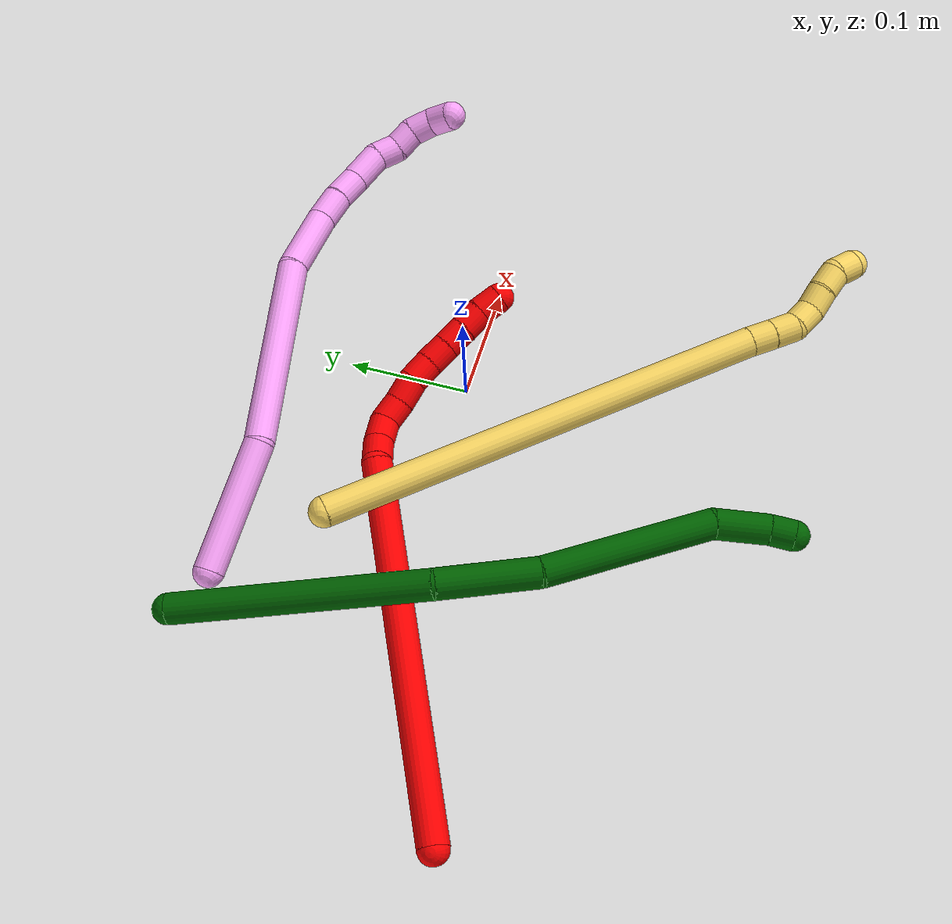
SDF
<sdf version="1.7">
 <world name="default">
  <model name="2">
   <static>0</static>
   <link name="2">
    <collision name="collision-cylinder-e_1_1_4">
     <pose>0.132969 0.051618 -0.06299 -2.4551 1.02127 -2.00582</pose>
     <geometry><cylinder><radius>0.0125</radius><length>0.311853</length></cylinder></geometry>
     <surface>
      <friction><ode><mu>1.16</mu><mu2>1.16</mu2><slip1>0</slip1><slip2>0</slip2></ode></friction>
      <contact><ode><kp>1e+06</kp><kd>1</kd><max_vel>0</max_vel><min_depth>0.001</min_depth></ode></contact>
     </surface>
    </collision>
    <visual name="visual-cylinder-e_1_1_4">
     <pose>0.132969 0.051618 -0.06299 -2.4551 1.02127 -2.00582</pose>
     <geometry><cylinder><radius>0.0125</radius><length>0.311853</length></cylinder></geometry>
     <material><ambient>1 0 0 1</ambient></material>
    </visual>
    <collision name="collision-cylinder-e_2_4_5">
     <pose>0.273718 0.105488 -0.134866 -2.89342 0.703719 -2.4866</pose>
     <geometry><cylinder><radius>0.0125</radius><length>0.024045</length></cylinder></geometry>
     <surface>
      <friction><ode><mu>1.16</mu><mu2>1.16</mu2><slip1>0</slip1><slip2>0</slip2></ode></friction>
      <contact><ode><kp>1e+06</kp><kd>1</kd><max_vel>0</max_vel><min_depth>0.001</min_depth></ode></contact>
     </surface>
    </collision>
    <visual name="visual-cylinder-e_2_4_5">
     <pose>0.273718 0.105488 -0.134866 -2.89342 0.703719 -2.4866</pose>
     <geometry><cylinder><radius>0.0125</radius><length>0.024045</length></cylinder></geometry>
     <material><ambient>1 0 0 1</ambient></material>
    </visual>
    <collision name="collision-cylinder-e_3_5_6">
     <pose>0.290549 0.107527 -0.149459 3.10449 1.00794 3.07434</pose>
     <geometry><cylinder><radius>0.0125</radius><length>0.021407</length></cylinder></geometry>
     <surface>
      <friction><ode><mu>1.16</mu><mu2>1.16</mu2><slip1>0</slip1><slip2>0</slip2></ode></friction>
      <contact><ode><kp>1e+06</kp><kd>1</kd><max_vel>0</max_vel><min_depth>0.001</min_depth></ode></contact>
     </surface>
    </collision>
    <visual name="visual-cylinder-e_3_5_6">
     <pose>0.290549 0.107527 -0.149459 3.10449 1.00794 3.07434</pose>
     <geometry><cylinder><radius>0.0125</radius><length>0.021407</length></cylinder></geometry>
     <material><ambient>1 0 0 1</ambient></material>
    </visual>
    <collision name="collision-cylinder-e_4_6_7">
     <pose>0.308315 0.102963 -0.158263 2.18926 1.0209 1.65293</pose>
     <geometry><cylinder><radius>0.0125</radius><length>0.020441</length></cylinder></geometry>
     <surface>
      <friction><ode><mu>1.16</mu><mu2>1.16</mu2><slip1>0</slip1><slip2>0</slip2></ode></friction>
      <contact><ode><kp>1e+06</kp><kd>1</kd><max_vel>0</max_vel><min_depth>0.001</min_depth></ode></contact>
     </surface>
    </collision>
    <visual name="visual-cylinder-e_4_6_7">
     <pose>0.308315 0.102963 -0.158263 2.18926 1.0209 1.65293</pose>
     <geometry><cylinder><radius>0.0125</radius><length>0.020441</length></cylinder></geometry>
     <material><ambient>1 0 0 1</ambient></material>
    </visual>
    <collision name="collision-cylinder-e_5_7_8">
     <pose>0.326481 0.094724 -0.162981 1.96564 1.15161 1.54429</pose>
     <geometry><cylinder><radius>0.0125</radius><length>0.020697</length></cylinder></geometry>
     <surface>
      <friction><ode><mu>1.16</mu><mu2>1.16</mu2><slip1>0</slip1><slip2>0</slip2></ode></friction>
      <contact><ode><kp>1e+06</kp><kd>1</kd><max_vel>0</max_vel><min_depth>0.001</min_depth></ode></contact>
     </surface>
    </collision>
    <visual name="visual-cylinder-e_5_7_8">
     <pose>0.326481 0.094724 -0.162981 1.96564 1.15161 1.54429</pose>
     <geometry><cylinder><radius>0.0125</radius><length>0.020697</length></cylinder></geometry>
     <material><ambient>1 0 0 1</ambient></material>
    </visual>
    <collision name="collision-cylinder-e_6_8_9">
     <pose>0.34433 0.085446 -0.167579 2.07566 0.938046 1.4194</pose>
     <geometry><cylinder><radius>0.0125</radius><length>0.020825</length></cylinder></geometry>
     <surface>
      <friction><ode><mu>1.16</mu><mu2>1.16</mu2><slip1>0</slip1><slip2>0</slip2></ode></friction>
      <contact><ode><kp>1e+06</kp><kd>1</kd><max_vel>0</max_vel><min_depth>0.001</min_depth></ode></contact>
     </surface>
    </collision>
    <visual name="visual-cylinder-e_6_8_9">
     <pose>0.34433 0.085446 -0.167579 2.07566 0.938046 1.4194</pose>
     <geometry><cylinder><radius>0.0125</radius><length>0.020825</length></cylinder></geometry>
     <material><ambient>1 0 0 1</ambient></material>
    </visual>
    <collision name="collision-cylinder-e_7_9_10">
     <pose>0.360692 0.074248 -0.172739 1.9301 0.908984 1.22877</pose>
     <geometry><cylinder><radius>0.0125</radius><length>0.020193</length></cylinder></geometry>
     <surface>
      <friction><ode><mu>1.16</mu><mu2>1.16</mu2><slip1>0</slip1><slip2>0</slip2></ode></friction>
      <contact><ode><kp>1e+06</kp><kd>1</kd><max_vel>0</max_vel><min_depth>0.001</min_depth></ode></contact>
     </surface>
    </collision>
    <visual name="visual-cylinder-e_7_9_10">
     <pose>0.360692 0.074248 -0.172739 1.9301 0.908984 1.22877</pose>
     <geometry><cylinder><radius>0.0125</radius><length>0.020193</length></cylinder></geometry>
     <material><ambient>1 0 0 1</ambient></material>
    </visual>
    <collision name="collision-cylinder-e_8_10_11">
     <pose>0.37674 0.062513 -0.176993 1.90713 0.9104 1.20752</pose>
     <geometry><cylinder><radius>0.0125</radius><length>0.020469</length></cylinder></geometry>
     <surface>
      <friction><ode><mu>1.16</mu><mu2>1.16</mu2><slip1>0</slip1><slip2>0</slip2></ode></friction>
      <contact><ode><kp>1e+06</kp><kd>1</kd><max_vel>0</max_vel><min_depth>0.001</min_depth></ode></contact>
     </surface>
    </collision>
    <visual name="visual-cylinder-e_8_10_11">
     <pose>0.37674 0.062513 -0.176993 1.90713 0.9104 1.20752</pose>
     <geometry><cylinder><radius>0.0125</radius><length>0.020469</length></cylinder></geometry>
     <material><ambient>1 0 0 1</ambient></material>
    </visual>
    <collision name="collision-cylinder-e_9_11_12">
     <pose>0.392946 0.051039 -0.181037 1.91227 0.943582 1.25175</pose>
     <geometry><cylinder><radius>0.0125</radius><length>0.020067</length></cylinder></geometry>
     <surface>
      <friction><ode><mu>1.16</mu><mu2>1.16</mu2><slip1>0</slip1><slip2>0</slip2></ode></friction>
      <contact><ode><kp>1e+06</kp><kd>1</kd><max_vel>0</max_vel><min_depth>0.001</min_depth></ode></contact>
     </surface>
    </collision>
    <visual name="visual-cylinder-e_9_11_12">
     <pose>0.392946 0.051039 -0.181037 1.91227 0.943582 1.25175</pose>
     <geometry><cylinder><radius>0.0125</radius><length>0.020067</length></cylinder></geometry>
     <material><ambient>1 0 0 1</ambient></material>
    </visual>
    <collision name="collision-cylinder-e_10_12_2">
     <pose>0.408021 0.038451 -0.184481 1.77692 0.768407 0.923407</pose>
     <geometry><cylinder><radius>0.0125</radius><length>0.020004</length></cylinder></geometry>
     <surface>
      <friction><ode><mu>1.16</mu><mu2>1.16</mu2><slip1>0</slip1><slip2>0</slip2></ode></friction>
      <contact><ode><kp>1e+06</kp><kd>1</kd><max_vel>0</max_vel><min_depth>0.001</min_depth></ode></contact>
     </surface>
    </collision>
    <visual name="visual-cylinder-e_10_12_2">
     <pose>0.408021 0.038451 -0.184481 1.77692 0.768407 0.923407</pose>
     <geometry><cylinder><radius>0.0125</radius><length>0.020004</length></cylinder></geometry>
     <material><ambient>1 0 0 1</ambient></material>
    </visual>
    <collision name="collision-sphere-2">
     <pose>0.414972 0.031411 -0.185952 0 -0 0</pose>
     <geometry><sphere><radius>0.0125</radius></sphere></geometry>
     <surface>
      <friction><ode><mu>1.16</mu><mu2>1.16</mu2><slip1>0</slip1><slip2>0</slip2></ode></friction>
      <contact><ode><kp>1e+06</kp><kd>1</kd><max_vel>0</max_vel><min_depth>0.001</min_depth></ode></contact>
     </surface>
    </collision>
    <visual name="visual-sphere-2">
     <pose>0.414972 0.031411 -0.185952 0 -0 0</pose>
     <geometry><sphere><radius>0.0125</radius></sphere></geometry>
     <material><ambient>1 0 0 1</ambient></material>
    </visual>
    <collision name="collision-sphere-12">
     <pose>0.401069 0.04549 -0.183009 0 -0 0</pose>
     <geometry><sphere><radius>0.0125</radius></sphere></geometry>
     <surface>
      <friction><ode><mu>1.16</mu><mu2>1.16</mu2><slip1>0</slip1><slip2>0</slip2></ode></friction>
      <contact><ode><kp>1e+06</kp><kd>1</kd><max_vel>0</max_vel><min_depth>0.001</min_depth></ode></contact>
     </surface>
    </collision>
    <visual name="visual-sphere-12">
     <pose>0.401069 0.04549 -0.183009 0 -0 0</pose>
     <geometry><sphere><radius>0.0125</radius></sphere></geometry>
     <material><ambient>1 0 0 1</ambient></material>
    </visual>
    <collision name="collision-sphere-11">
     <pose>0.384822 0.056587 -0.179065 0 -0 0</pose>
     <geometry><sphere><radius>0.0125</radius></sphere></geometry>
     <surface>
      <friction><ode><mu>1.16</mu><mu2>1.16</mu2><slip1>0</slip1><slip2>0</slip2></ode></friction>
      <contact><ode><kp>1e+06</kp><kd>1</kd><max_vel>0</max_vel><min_depth>0.001</min_depth></ode></contact>
     </surface>
    </collision>
    <visual name="visual-sphere-11">
     <pose>0.384822 0.056587 -0.179065 0 -0 0</pose>
     <geometry><sphere><radius>0.0125</radius></sphere></geometry>
     <material><ambient>1 0 0 1</ambient></material>
    </visual>
    <collision name="collision-sphere-10">
     <pose>0.368657 0.06844 -0.174921 0 -0 0</pose>
     <geometry><sphere><radius>0.0125</radius></sphere></geometry>
     <surface>
      <friction><ode><mu>1.16</mu><mu2>1.16</mu2><slip1>0</slip1><slip2>0</slip2></ode></friction>
      <contact><ode><kp>1e+06</kp><kd>1</kd><max_vel>0</max_vel><min_depth>0.001</min_depth></ode></contact>
     </surface>
    </collision>
    <visual name="visual-sphere-10">
     <pose>0.368657 0.06844 -0.174921 0 -0 0</pose>
     <geometry><sphere><radius>0.0125</radius></sphere></geometry>
     <material><ambient>1 0 0 1</ambient></material>
    </visual>
    <collision name="collision-sphere-9">
     <pose>0.352727 0.080057 -0.170557 0 -0 0</pose>
     <geometry><sphere><radius>0.0125</radius></sphere></geometry>
     <surface>
      <friction><ode><mu>1.16</mu><mu2>1.16</mu2><slip1>0</slip1><slip2>0</slip2></ode></friction>
      <contact><ode><kp>1e+06</kp><kd>1</kd><max_vel>0</max_vel><min_depth>0.001</min_depth></ode></contact>
     </surface>
    </collision>
    <visual name="visual-sphere-9">
     <pose>0.352727 0.080057 -0.170557 0 -0 0</pose>
     <geometry><sphere><radius>0.0125</radius></sphere></geometry>
     <material><ambient>1 0 0 1</ambient></material>
    </visual>
    <collision name="collision-sphere-4">
     <pose>0.265938 0.103236 -0.125981 0 -0 0</pose>
     <geometry><sphere><radius>0.0125</radius></sphere></geometry>
     <surface>
      <friction><ode><mu>1.16</mu><mu2>1.16</mu2><slip1>0</slip1><slip2>0</slip2></ode></friction>
      <contact><ode><kp>1e+06</kp><kd>1</kd><max_vel>0</max_vel><min_depth>0.001</min_depth></ode></contact>
     </surface>
    </collision>
    <visual name="visual-sphere-4">
     <pose>0.265938 0.103236 -0.125981 0 -0 0</pose>
     <geometry><sphere><radius>0.0125</radius></sphere></geometry>
     <material><ambient>1 0 0 1</ambient></material>
    </visual>
    <collision name="collision-sphere-1">
     <geometry><sphere><radius>0.0125</radius></sphere></geometry>
     <surface>
      <friction><ode><mu>1.16</mu><mu2>1.16</mu2><slip1>0</slip1><slip2>0</slip2></ode></friction>
      <contact><ode><kp>1e+06</kp><kd>1</kd><max_vel>0</max_vel><min_depth>0.001</min_depth></ode></contact>
     </surface>
    </collision>
    <visual name="visual-sphere-1">
     <geometry><sphere><radius>0.0125</radius></sphere></geometry>
     <material><ambient>1 0 0 1</ambient></material>
    </visual>
    <collision name="collision-sphere-8">
     <pose>0.335934 0.090836 -0.164601 0 -0 0</pose>
     <geometry><sphere><radius>0.0125</radius></sphere></geometry>
     <surface>
      <friction><ode><mu>1.16</mu><mu2>1.16</mu2><slip1>0</slip1><slip2>0</slip2></ode></friction>
      <contact><ode><kp>1e+06</kp><kd>1</kd><max_vel>0</max_vel><min_depth>0.001</min_depth></ode></contact>
     </surface>
    </collision>
    <visual name="visual-sphere-8">
     <pose>0.335934 0.090836 -0.164601 0 -0 0</pose>
     <geometry><sphere><radius>0.0125</radius></sphere></geometry>
     <material><ambient>1 0 0 1</ambient></material>
    </visual>
    <collision name="collision-sphere-5">
     <pose>0.281497 0.107739 -0.143752 0 -0 0</pose>
     <geometry><sphere><radius>0.0125</radius></sphere></geometry>
     <surface>
      <friction><ode><mu>1.16</mu><mu2>1.16</mu2><slip1>0</slip1><slip2>0</slip2></ode></friction>
      <contact><ode><kp>1e+06</kp><kd>1</kd><max_vel>0</max_vel><min_depth>0.001</min_depth></ode></contact>
     </surface>
    </collision>
    <visual name="visual-sphere-5">
     <pose>0.281497 0.107739 -0.143752 0 -0 0</pose>
     <geometry><sphere><radius>0.0125</radius></sphere></geometry>
     <material><ambient>1 0 0 1</ambient></material>
    </visual>
    <collision name="collision-sphere-6">
     <pose>0.299601 0.107315 -0.155167 0 -0 0</pose>
     <geometry><sphere><radius>0.0125</radius></sphere></geometry>
     <surface>
      <friction><ode><mu>1.16</mu><mu2>1.16</mu2><slip1>0</slip1><slip2>0</slip2></ode></friction>
      <contact><ode><kp>1e+06</kp><kd>1</kd><max_vel>0</max_vel><min_depth>0.001</min_depth></ode></contact>
     </surface>
    </collision>
    <visual name="visual-sphere-6">
     <pose>0.299601 0.107315 -0.155167 0 -0 0</pose>
     <geometry><sphere><radius>0.0125</radius></sphere></geometry>
     <material><ambient>1 0 0 1</ambient></material>
    </visual>
    <collision name="collision-sphere-7">
     <pose>0.317029 0.098612 -0.16136 0 -0 0</pose>
     <geometry><sphere><radius>0.0125</radius></sphere></geometry>
     <surface>
      <friction><ode><mu>1.16</mu><mu2>1.16</mu2><slip1>0</slip1><slip2>0</slip2></ode></friction>
      <contact><ode><kp>1e+06</kp><kd>1</kd><max_vel>0</max_vel><min_depth>0.001</min_depth></ode></contact>
     </surface>
    </collision>
    <visual name="visual-sphere-7">
     <pose>0.317029 0.098612 -0.16136 0 -0 0</pose>
     <geometry><sphere><radius>0.0125</radius></sphere></geometry>
     <material><ambient>1 0 0 1</ambient></material>
    </visual>
    <inertial>
     <pose>0.211081 0.062705 -0.101237 0 -0 0</pose>
     <mass>0.5</mass>
     <inertia>
      <ixx>-0.001725</ixx>
      <ixy>0</ixy>
      <ixz>0</ixz>
      <iyy>0.000887</iyy>
      <iyz>0</iyz>
      <izz>-0.003027</izz>
     </inertia>
    </inertial>
   </link>
   <pose>-0.375419 -0.088818 0.011496 -0.03916 -0.488552 0.125887</pose>
  </model>
  <model name="4">
   <static>0</static>
   <link name="4">
    <collision name="collision-cylinder-e_1_1_4">
     <pose>0.023039 0.01368 0.047461 -0.280633 0.436443 -0.062622</pose>
     <geometry><cylinder><radius>0.0125</radius><length>0.109004</length></cylinder></geometry>
     <surface>
      <friction><ode><mu>1.16</mu><mu2>1.16</mu2><slip1>0</slip1><slip2>0</slip2></ode></friction>
      <contact><ode><kp>1e+06</kp><kd>1</kd><max_vel>0</max_vel><min_depth>0.001</min_depth></ode></contact>
     </surface>
    </collision>
    <visual name="visual-cylinder-e_1_1_4">
     <pose>0.023039 0.01368 0.047461 -0.280633 0.436443 -0.062622</pose>
     <geometry><cylinder><radius>0.0125</radius><length>0.109004</length></cylinder></geometry>
     <material><ambient>1 0.65098 0.996078 1</ambient></material>
    </visual>
    <collision name="collision-cylinder-e_2_4_5">
     <pose>0.070943 0.024218 0.174741 0.039351 0.301764 0.005984</pose>
     <geometry><cylinder><radius>0.0125</radius><length>0.167324</length></cylinder></geometry>
     <surface>
      <friction><ode><mu>1.16</mu><mu2>1.16</mu2><slip1>0</slip1><slip2>0</slip2></ode></friction>
      <contact><ode><kp>1e+06</kp><kd>1</kd><max_vel>0</max_vel><min_depth>0.001</min_depth></ode></contact>
     </surface>
    </collision>
    <visual name="visual-cylinder-e_2_4_5">
     <pose>0.070943 0.024218 0.174741 0.039351 0.301764 0.005984</pose>
     <geometry><cylinder><radius>0.0125</radius><length>0.167324</length></cylinder></geometry>
     <material><ambient>1 0.65098 0.996078 1</ambient></material>
    </visual>
    <collision name="collision-cylinder-e_3_5_6">
     <pose>0.098222 0.025746 0.283567 -0.159654 0.082015 -0.006565</pose>
     <geometry><cylinder><radius>0.0125</radius><length>0.058958</length></cylinder></geometry>
     <surface>
      <friction><ode><mu>1.16</mu><mu2>1.16</mu2><slip1>0</slip1><slip2>0</slip2></ode></friction>
      <contact><ode><kp>1e+06</kp><kd>1</kd><max_vel>0</max_vel><min_depth>0.001</min_depth></ode></contact>
     </surface>
    </collision>
    <visual name="visual-cylinder-e_3_5_6">
     <pose>0.098222 0.025746 0.283567 -0.159654 0.082015 -0.006565</pose>
     <geometry><cylinder><radius>0.0125</radius><length>0.058958</length></cylinder></geometry>
     <material><ambient>1 0.65098 0.996078 1</ambient></material>
    </visual>
    <collision name="collision-cylinder-e_4_6_7">
     <pose>0.102632 0.03472 0.325388 -0.32402 0.146509 -0.023987</pose>
     <geometry><cylinder><radius>0.0125</radius><length>0.027328</length></cylinder></geometry>
     <surface>
      <friction><ode><mu>1.16</mu><mu2>1.16</mu2><slip1>0</slip1><slip2>0</slip2></ode></friction>
      <contact><ode><kp>1e+06</kp><kd>1</kd><max_vel>0</max_vel><min_depth>0.001</min_depth></ode></contact>
     </surface>
    </collision>
    <visual name="visual-cylinder-e_4_6_7">
     <pose>0.102632 0.03472 0.325388 -0.32402 0.146509 -0.023987</pose>
     <geometry><cylinder><radius>0.0125</radius><length>0.027328</length></cylinder></geometry>
     <material><ambient>1 0.65098 0.996078 1</ambient></material>
    </visual>
    <collision name="collision-cylinder-e_5_7_8">
     <pose>0.105135 0.043901 0.349859 -0.396239 0.040155 -0.008062</pose>
     <geometry><cylinder><radius>0.0125</radius><length>0.025292</length></cylinder></geometry>
     <surface>
      <friction><ode><mu>1.16</mu><mu2>1.16</mu2><slip1>0</slip1><slip2>0</slip2></ode></friction>
      <contact><ode><kp>1e+06</kp><kd>1</kd><max_vel>0</max_vel><min_depth>0.001</min_depth></ode></contact>
     </surface>
    </collision>
    <visual name="visual-cylinder-e_5_7_8">
     <pose>0.105135 0.043901 0.349859 -0.396239 0.040155 -0.008062</pose>
     <geometry><cylinder><radius>0.0125</radius><length>0.025292</length></cylinder></geometry>
     <material><ambient>1 0.65098 0.996078 1</ambient></material>
    </visual>
    <collision name="collision-cylinder-e_6_8_9">
     <pose>0.107821 0.055712 0.375347 -0.464716 0.139919 -0.03316</pose>
     <geometry><cylinder><radius>0.0125</radius><length>0.03125</length></cylinder></geometry>
     <surface>
      <friction><ode><mu>1.16</mu><mu2>1.16</mu2><slip1>0</slip1><slip2>0</slip2></ode></friction>
      <contact><ode><kp>1e+06</kp><kd>1</kd><max_vel>0</max_vel><min_depth>0.001</min_depth></ode></contact>
     </surface>
    </collision>
    <visual name="visual-cylinder-e_6_8_9">
     <pose>0.107821 0.055712 0.375347 -0.464716 0.139919 -0.03316</pose>
     <geometry><cylinder><radius>0.0125</radius><length>0.03125</length></cylinder></geometry>
     <material><ambient>1 0.65098 0.996078 1</ambient></material>
    </visual>
    <collision name="collision-cylinder-e_7_9_10">
     <pose>0.109353 0.070316 0.395975 -0.845718 -0.063072 0.02839</pose>
     <geometry><cylinder><radius>0.0125</radius><length>0.020536</length></cylinder></geometry>
     <surface>
      <friction><ode><mu>1.16</mu><mu2>1.16</mu2><slip1>0</slip1><slip2>0</slip2></ode></friction>
      <contact><ode><kp>1e+06</kp><kd>1</kd><max_vel>0</max_vel><min_depth>0.001</min_depth></ode></contact>
     </surface>
    </collision>
    <visual name="visual-cylinder-e_7_9_10">
     <pose>0.109353 0.070316 0.395975 -0.845718 -0.063072 0.02839</pose>
     <geometry><cylinder><radius>0.0125</radius><length>0.020536</length></cylinder></geometry>
     <material><ambient>1 0.65098 0.996078 1</ambient></material>
    </visual>
    <collision name="collision-cylinder-e_8_10_11">
     <pose>0.112007 0.084559 0.409661 -0.761956 0.333658 -0.134696</pose>
     <geometry><cylinder><radius>0.0125</radius><length>0.020157</length></cylinder></geometry>
     <surface>
      <friction><ode><mu>1.16</mu><mu2>1.16</mu2><slip1>0</slip1><slip2>0</slip2></ode></friction>
      <contact><ode><kp>1e+06</kp><kd>1</kd><max_vel>0</max_vel><min_depth>0.001</min_depth></ode></contact>
     </surface>
    </collision>
    <visual name="visual-cylinder-e_8_10_11">
     <pose>0.112007 0.084559 0.409661 -0.761956 0.333658 -0.134696</pose>
     <geometry><cylinder><radius>0.0125</radius><length>0.020157</length></cylinder></geometry>
     <material><ambient>1 0.65098 0.996078 1</ambient></material>
    </visual>
    <collision name="collision-cylinder-e_9_11_12">
     <pose>0.116918 0.100176 0.420638 -1.1462 0.160904 -0.103971</pose>
     <geometry><cylinder><radius>0.0125</radius><length>0.020108</length></cylinder></geometry>
     <surface>
      <friction><ode><mu>1.16</mu><mu2>1.16</mu2><slip1>0</slip1><slip2>0</slip2></ode></friction>
      <contact><ode><kp>1e+06</kp><kd>1</kd><max_vel>0</max_vel><min_depth>0.001</min_depth></ode></contact>
     </surface>
    </collision>
    <visual name="visual-cylinder-e_9_11_12">
     <pose>0.116918 0.100176 0.420638 -1.1462 0.160904 -0.103971</pose>
     <geometry><cylinder><radius>0.0125</radius><length>0.020108</length></cylinder></geometry>
     <material><ambient>1 0.65098 0.996078 1</ambient></material>
    </visual>
    <collision name="collision-cylinder-e_10_12_2">
     <pose>0.121072 0.118902 0.424269 -1.61807 0.256532 -0.26881</pose>
     <geometry><cylinder><radius>0.0125</radius><length>0.020043</length></cylinder></geometry>
     <surface>
      <friction><ode><mu>1.16</mu><mu2>1.16</mu2><slip1>0</slip1><slip2>0</slip2></ode></friction>
      <contact><ode><kp>1e+06</kp><kd>1</kd><max_vel>0</max_vel><min_depth>0.001</min_depth></ode></contact>
     </surface>
    </collision>
    <visual name="visual-cylinder-e_10_12_2">
     <pose>0.121072 0.118902 0.424269 -1.61807 0.256532 -0.26881</pose>
     <geometry><cylinder><radius>0.0125</radius><length>0.020043</length></cylinder></geometry>
     <material><ambient>1 0.65098 0.996078 1</ambient></material>
    </visual>
    <collision name="collision-sphere-2">
     <pose>0.123614 0.128584 0.42381 0 -0 0</pose>
     <geometry><sphere><radius>0.0125</radius></sphere></geometry>
     <surface>
      <friction><ode><mu>1.16</mu><mu2>1.16</mu2><slip1>0</slip1><slip2>0</slip2></ode></friction>
      <contact><ode><kp>1e+06</kp><kd>1</kd><max_vel>0</max_vel><min_depth>0.001</min_depth></ode></contact>
     </surface>
    </collision>
    <visual name="visual-sphere-2">
     <pose>0.123614 0.128584 0.42381 0 -0 0</pose>
     <geometry><sphere><radius>0.0125</radius></sphere></geometry>
     <material><ambient>1 0.65098 0.996078 1</ambient></material>
    </visual>
    <collision name="collision-sphere-12">
     <pose>0.118529 0.109219 0.424727 0 -0 0</pose>
     <geometry><sphere><radius>0.0125</radius></sphere></geometry>
     <surface>
      <friction><ode><mu>1.16</mu><mu2>1.16</mu2><slip1>0</slip1><slip2>0</slip2></ode></friction>
      <contact><ode><kp>1e+06</kp><kd>1</kd><max_vel>0</max_vel><min_depth>0.001</min_depth></ode></contact>
     </surface>
    </collision>
    <visual name="visual-sphere-12">
     <pose>0.118529 0.109219 0.424727 0 -0 0</pose>
     <geometry><sphere><radius>0.0125</radius></sphere></geometry>
     <material><ambient>1 0.65098 0.996078 1</ambient></material>
    </visual>
    <collision name="collision-sphere-11">
     <pose>0.115308 0.091133 0.41655 0 -0 0</pose>
     <geometry><sphere><radius>0.0125</radius></sphere></geometry>
     <surface>
      <friction><ode><mu>1.16</mu><mu2>1.16</mu2><slip1>0</slip1><slip2>0</slip2></ode></friction>
      <contact><ode><kp>1e+06</kp><kd>1</kd><max_vel>0</max_vel><min_depth>0.001</min_depth></ode></contact>
     </surface>
    </collision>
    <visual name="visual-sphere-11">
     <pose>0.115308 0.091133 0.41655 0 -0 0</pose>
     <geometry><sphere><radius>0.0125</radius></sphere></geometry>
     <material><ambient>1 0.65098 0.996078 1</ambient></material>
    </visual>
    <collision name="collision-sphere-10">
     <pose>0.108706 0.077986 0.402771 0 -0 0</pose>
     <geometry><sphere><radius>0.0125</radius></sphere></geometry>
     <surface>
      <friction><ode><mu>1.16</mu><mu2>1.16</mu2><slip1>0</slip1><slip2>0</slip2></ode></friction>
      <contact><ode><kp>1e+06</kp><kd>1</kd><max_vel>0</max_vel><min_depth>0.001</min_depth></ode></contact>
     </surface>
    </collision>
    <visual name="visual-sphere-10">
     <pose>0.108706 0.077986 0.402771 0 -0 0</pose>
     <geometry><sphere><radius>0.0125</radius></sphere></geometry>
     <material><ambient>1 0.65098 0.996078 1</ambient></material>
    </visual>
    <collision name="collision-sphere-9">
     <pose>0.11 0.062646 0.389179 0 -0 0</pose>
     <geometry><sphere><radius>0.0125</radius></sphere></geometry>
     <surface>
      <friction><ode><mu>1.16</mu><mu2>1.16</mu2><slip1>0</slip1><slip2>0</slip2></ode></friction>
      <contact><ode><kp>1e+06</kp><kd>1</kd><max_vel>0</max_vel><min_depth>0.001</min_depth></ode></contact>
     </surface>
    </collision>
    <visual name="visual-sphere-9">
     <pose>0.11 0.062646 0.389179 0 -0 0</pose>
     <geometry><sphere><radius>0.0125</radius></sphere></geometry>
     <material><ambient>1 0.65098 0.996078 1</ambient></material>
    </visual>
    <collision name="collision-sphere-4">
     <pose>0.046078 0.02736 0.094921 0 -0 0</pose>
     <geometry><sphere><radius>0.0125</radius></sphere></geometry>
     <surface>
      <friction><ode><mu>1.16</mu><mu2>1.16</mu2><slip1>0</slip1><slip2>0</slip2></ode></friction>
      <contact><ode><kp>1e+06</kp><kd>1</kd><max_vel>0</max_vel><min_depth>0.001</min_depth></ode></contact>
     </surface>
    </collision>
    <visual name="visual-sphere-4">
     <pose>0.046078 0.02736 0.094921 0 -0 0</pose>
     <geometry><sphere><radius>0.0125</radius></sphere></geometry>
     <material><ambient>1 0.65098 0.996078 1</ambient></material>
    </visual>
    <collision name="collision-sphere-1">
     <geometry><sphere><radius>0.0125</radius></sphere></geometry>
     <surface>
      <friction><ode><mu>1.16</mu><mu2>1.16</mu2><slip1>0</slip1><slip2>0</slip2></ode></friction>
      <contact><ode><kp>1e+06</kp><kd>1</kd><max_vel>0</max_vel><min_depth>0.001</min_depth></ode></contact>
     </surface>
    </collision>
    <visual name="visual-sphere-1">
     <geometry><sphere><radius>0.0125</radius></sphere></geometry>
     <material><ambient>1 0.65098 0.996078 1</ambient></material>
    </visual>
    <collision name="collision-sphere-8">
     <pose>0.105642 0.048777 0.361515 0 -0 0</pose>
     <geometry><sphere><radius>0.0125</radius></sphere></geometry>
     <surface>
      <friction><ode><mu>1.16</mu><mu2>1.16</mu2><slip1>0</slip1><slip2>0</slip2></ode></friction>
      <contact><ode><kp>1e+06</kp><kd>1</kd><max_vel>0</max_vel><min_depth>0.001</min_depth></ode></contact>
     </surface>
    </collision>
    <visual name="visual-sphere-8">
     <pose>0.105642 0.048777 0.361515 0 -0 0</pose>
     <geometry><sphere><radius>0.0125</radius></sphere></geometry>
     <material><ambient>1 0.65098 0.996078 1</ambient></material>
    </visual>
    <collision name="collision-sphere-5">
     <pose>0.095807 0.021075 0.254561 0 -0 0</pose>
     <geometry><sphere><radius>0.0125</radius></sphere></geometry>
     <surface>
      <friction><ode><mu>1.16</mu><mu2>1.16</mu2><slip1>0</slip1><slip2>0</slip2></ode></friction>
      <contact><ode><kp>1e+06</kp><kd>1</kd><max_vel>0</max_vel><min_depth>0.001</min_depth></ode></contact>
     </surface>
    </collision>
    <visual name="visual-sphere-5">
     <pose>0.095807 0.021075 0.254561 0 -0 0</pose>
     <geometry><sphere><radius>0.0125</radius></sphere></geometry>
     <material><ambient>1 0.65098 0.996078 1</ambient></material>
    </visual>
    <collision name="collision-sphere-6">
     <pose>0.100637 0.030416 0.312574 0 -0 0</pose>
     <geometry><sphere><radius>0.0125</radius></sphere></geometry>
     <surface>
      <friction><ode><mu>1.16</mu><mu2>1.16</mu2><slip1>0</slip1><slip2>0</slip2></ode></friction>
      <contact><ode><kp>1e+06</kp><kd>1</kd><max_vel>0</max_vel><min_depth>0.001</min_depth></ode></contact>
     </surface>
    </collision>
    <visual name="visual-sphere-6">
     <pose>0.100637 0.030416 0.312574 0 -0 0</pose>
     <geometry><sphere><radius>0.0125</radius></sphere></geometry>
     <material><ambient>1 0.65098 0.996078 1</ambient></material>
    </visual>
    <collision name="collision-sphere-7">
     <pose>0.104627 0.039024 0.338202 0 -0 0</pose>
     <geometry><sphere><radius>0.0125</radius></sphere></geometry>
     <surface>
      <friction><ode><mu>1.16</mu><mu2>1.16</mu2><slip1>0</slip1><slip2>0</slip2></ode></friction>
      <contact><ode><kp>1e+06</kp><kd>1</kd><max_vel>0</max_vel><min_depth>0.001</min_depth></ode></contact>
     </surface>
    </collision>
    <visual name="visual-sphere-7">
     <pose>0.104627 0.039024 0.338202 0 -0 0</pose>
     <geometry><sphere><radius>0.0125</radius></sphere></geometry>
     <material><ambient>1 0.65098 0.996078 1</ambient></material>
    </visual>
    <inertial>
     <pose>0.076574 0.036815 0.227904 0 -0 0</pose>
     <mass>0.5</mass>
     <inertia>
      <ixx>0.000519</ixx>
      <ixy>0</ixy>
      <ixz>0</ixz>
      <iyy>0.00054</iyy>
      <iyz>0</iyz>
      <izz>-0.00016</izz>
     </inertia>
    </inertial>
   </link>
   <pose>-0.216648 0.143629 0.012183 2.30635 -1.189 0.934422</pose>
  </model>
  <model name="5">
   <static>0</static>
   <link name="5">
    <collision name="collision-cylinder-e_1_1_4">
     <pose>0.103305 -0.122111 0.098569 0.891675 0.582182 0.284444</pose>
     <geometry><cylinder><radius>0.0125</radius><length>0.37576</length></cylinder></geometry>
     <surface>
      <friction><ode><mu>1.16</mu><mu2>1.16</mu2><slip1>0</slip1><slip2>0</slip2></ode></friction>
      <contact><ode><kp>1e+06</kp><kd>1</kd><max_vel>0</max_vel><min_depth>0.001</min_depth></ode></contact>
     </surface>
    </collision>
    <visual name="visual-cylinder-e_1_1_4">
     <pose>0.103305 -0.122111 0.098569 0.891675 0.582182 0.284444</pose>
     <geometry><cylinder><radius>0.0125</radius><length>0.37576</length></cylinder></geometry>
     <material><ambient>1 0.858824 0.4 1</ambient></material>
    </visual>
    <collision name="collision-cylinder-e_2_4_5">
     <pose>0.21283 -0.251156 0.202076 0.951952 0.630931 0.333364</pose>
     <geometry><cylinder><radius>0.0125</radius><length>0.021086</length></cylinder></geometry>
     <surface>
      <friction><ode><mu>1.16</mu><mu2>1.16</mu2><slip1>0</slip1><slip2>0</slip2></ode></friction>
      <contact><ode><kp>1e+06</kp><kd>1</kd><max_vel>0</max_vel><min_depth>0.001</min_depth></ode></contact>
     </surface>
    </collision>
    <visual name="visual-cylinder-e_2_4_5">
     <pose>0.21283 -0.251156 0.202076 0.951952 0.630931 0.333364</pose>
     <geometry><cylinder><radius>0.0125</radius><length>0.021086</length></cylinder></geometry>
     <material><ambient>1 0.858824 0.4 1</ambient></material>
    </visual>
    <collision name="collision-cylinder-e_3_5_6">
     <pose>0.225295 -0.265196 0.212256 0.935304 0.615703 0.318431</pose>
     <geometry><cylinder><radius>0.0125</radius><length>0.021629</length></cylinder></geometry>
     <surface>
      <friction><ode><mu>1.16</mu><mu2>1.16</mu2><slip1>0</slip1><slip2>0</slip2></ode></friction>
      <contact><ode><kp>1e+06</kp><kd>1</kd><max_vel>0</max_vel><min_depth>0.001</min_depth></ode></contact>
     </surface>
    </collision>
    <visual name="visual-cylinder-e_3_5_6">
     <pose>0.225295 -0.265196 0.212256 0.935304 0.615703 0.318431</pose>
     <geometry><cylinder><radius>0.0125</radius><length>0.021629</length></cylinder></geometry>
     <material><ambient>1 0.858824 0.4 1</ambient></material>
    </visual>
    <collision name="collision-cylinder-e_4_6_7">
     <pose>0.234031 -0.278816 0.225254 0.69855 0.240983 0.088138</pose>
     <geometry><cylinder><radius>0.0125</radius><length>0.020866</length></cylinder></geometry>
     <surface>
      <friction><ode><mu>1.16</mu><mu2>1.16</mu2><slip1>0</slip1><slip2>0</slip2></ode></friction>
      <contact><ode><kp>1e+06</kp><kd>1</kd><max_vel>0</max_vel><min_depth>0.001</min_depth></ode></contact>
     </surface>
    </collision>
    <visual name="visual-cylinder-e_4_6_7">
     <pose>0.234031 -0.278816 0.225254 0.69855 0.240983 0.088138</pose>
     <geometry><cylinder><radius>0.0125</radius><length>0.020866</length></cylinder></geometry>
     <material><ambient>1 0.858824 0.4 1</ambient></material>
    </visual>
    <collision name="collision-cylinder-e_5_7_8">
     <pose>0.236118 -0.29331 0.239307 0.902815 -0.03956 -0.01918</pose>
     <geometry><cylinder><radius>0.0125</radius><length>0.020341</length></cylinder></geometry>
     <surface>
      <friction><ode><mu>1.16</mu><mu2>1.16</mu2><slip1>0</slip1><slip2>0</slip2></ode></friction>
      <contact><ode><kp>1e+06</kp><kd>1</kd><max_vel>0</max_vel><min_depth>0.001</min_depth></ode></contact>
     </surface>
    </collision>
    <visual name="visual-cylinder-e_5_7_8">
     <pose>0.236118 -0.29331 0.239307 0.902815 -0.03956 -0.01918</pose>
     <geometry><cylinder><radius>0.0125</radius><length>0.020341</length></cylinder></geometry>
     <material><ambient>1 0.858824 0.4 1</ambient></material>
    </visual>
    <collision name="collision-cylinder-e_6_8_9">
     <pose>0.236322 -0.308475 0.252681 0.792964 0.059942 0.025101</pose>
     <geometry><cylinder><radius>0.0125</radius><length>0.020212</length></cylinder></geometry>
     <surface>
      <friction><ode><mu>1.16</mu><mu2>1.16</mu2><slip1>0</slip1><slip2>0</slip2></ode></friction>
      <contact><ode><kp>1e+06</kp><kd>1</kd><max_vel>0</max_vel><min_depth>0.001</min_depth></ode></contact>
     </surface>
    </collision>
    <visual name="visual-cylinder-e_6_8_9">
     <pose>0.236322 -0.308475 0.252681 0.792964 0.059942 0.025101</pose>
     <geometry><cylinder><radius>0.0125</radius><length>0.020212</length></cylinder></geometry>
     <material><ambient>1 0.858824 0.4 1</ambient></material>
    </visual>
    <collision name="collision-cylinder-e_7_9_2">
     <pose>0.241939 -0.321102 0.266568 0.67407 0.521972 0.186627</pose>
     <geometry><cylinder><radius>0.0125</radius><length>0.020106</length></cylinder></geometry>
     <surface>
      <friction><ode><mu>1.16</mu><mu2>1.16</mu2><slip1>0</slip1><slip2>0</slip2></ode></friction>
      <contact><ode><kp>1e+06</kp><kd>1</kd><max_vel>0</max_vel><min_depth>0.001</min_depth></ode></contact>
     </surface>
    </collision>
    <visual name="visual-cylinder-e_7_9_2">
     <pose>0.241939 -0.321102 0.266568 0.67407 0.521972 0.186627</pose>
     <geometry><cylinder><radius>0.0125</radius><length>0.020106</length></cylinder></geometry>
     <material><ambient>1 0.858824 0.4 1</ambient></material>
    </visual>
    <collision name="collision-sphere-2">
     <pose>0.246952 -0.326541 0.273377 0 -0 0</pose>
     <geometry><sphere><radius>0.0125</radius></sphere></geometry>
     <surface>
      <friction><ode><mu>1.16</mu><mu2>1.16</mu2><slip1>0</slip1><slip2>0</slip2></ode></friction>
      <contact><ode><kp>1e+06</kp><kd>1</kd><max_vel>0</max_vel><min_depth>0.001</min_depth></ode></contact>
     </surface>
    </collision>
    <visual name="visual-sphere-2">
     <pose>0.246952 -0.326541 0.273377 0 -0 0</pose>
     <geometry><sphere><radius>0.0125</radius></sphere></geometry>
     <material><ambient>1 0.858824 0.4 1</ambient></material>
    </visual>
    <collision name="collision-sphere-9">
     <pose>0.236927 -0.315662 0.25976 0 -0 0</pose>
     <geometry><sphere><radius>0.0125</radius></sphere></geometry>
     <surface>
      <friction><ode><mu>1.16</mu><mu2>1.16</mu2><slip1>0</slip1><slip2>0</slip2></ode></friction>
      <contact><ode><kp>1e+06</kp><kd>1</kd><max_vel>0</max_vel><min_depth>0.001</min_depth></ode></contact>
     </surface>
    </collision>
    <visual name="visual-sphere-9">
     <pose>0.236927 -0.315662 0.25976 0 -0 0</pose>
     <geometry><sphere><radius>0.0125</radius></sphere></geometry>
     <material><ambient>1 0.858824 0.4 1</ambient></material>
    </visual>
    <collision name="collision-sphere-4">
     <pose>0.20661 -0.244221 0.197138 0 -0 0</pose>
     <geometry><sphere><radius>0.0125</radius></sphere></geometry>
     <surface>
      <friction><ode><mu>1.16</mu><mu2>1.16</mu2><slip1>0</slip1><slip2>0</slip2></ode></friction>
      <contact><ode><kp>1e+06</kp><kd>1</kd><max_vel>0</max_vel><min_depth>0.001</min_depth></ode></contact>
     </surface>
    </collision>
    <visual name="visual-sphere-4">
     <pose>0.20661 -0.244221 0.197138 0 -0 0</pose>
     <geometry><sphere><radius>0.0125</radius></sphere></geometry>
     <material><ambient>1 0.858824 0.4 1</ambient></material>
    </visual>
    <collision name="collision-sphere-1">
     <geometry><sphere><radius>0.0125</radius></sphere></geometry>
     <surface>
      <friction><ode><mu>1.16</mu><mu2>1.16</mu2><slip1>0</slip1><slip2>0</slip2></ode></friction>
      <contact><ode><kp>1e+06</kp><kd>1</kd><max_vel>0</max_vel><min_depth>0.001</min_depth></ode></contact>
     </surface>
    </collision>
    <visual name="visual-sphere-1">
     <geometry><sphere><radius>0.0125</radius></sphere></geometry>
     <material><ambient>1 0.858824 0.4 1</ambient></material>
    </visual>
    <collision name="collision-sphere-8">
     <pose>0.235716 -0.301289 0.245602 0 -0 0</pose>
     <geometry><sphere><radius>0.0125</radius></sphere></geometry>
     <surface>
      <friction><ode><mu>1.16</mu><mu2>1.16</mu2><slip1>0</slip1><slip2>0</slip2></ode></friction>
      <contact><ode><kp>1e+06</kp><kd>1</kd><max_vel>0</max_vel><min_depth>0.001</min_depth></ode></contact>
     </surface>
    </collision>
    <visual name="visual-sphere-8">
     <pose>0.235716 -0.301289 0.245602 0 -0 0</pose>
     <geometry><sphere><radius>0.0125</radius></sphere></geometry>
     <material><ambient>1 0.858824 0.4 1</ambient></material>
    </visual>
    <collision name="collision-sphere-5">
     <pose>0.219049 -0.258091 0.207015 0 -0 0</pose>
     <geometry><sphere><radius>0.0125</radius></sphere></geometry>
     <surface>
      <friction><ode><mu>1.16</mu><mu2>1.16</mu2><slip1>0</slip1><slip2>0</slip2></ode></friction>
      <contact><ode><kp>1e+06</kp><kd>1</kd><max_vel>0</max_vel><min_depth>0.001</min_depth></ode></contact>
     </surface>
    </collision>
    <visual name="visual-sphere-5">
     <pose>0.219049 -0.258091 0.207015 0 -0 0</pose>
     <geometry><sphere><radius>0.0125</radius></sphere></geometry>
     <material><ambient>1 0.858824 0.4 1</ambient></material>
    </visual>
    <collision name="collision-sphere-6">
     <pose>0.231541 -0.272301 0.217496 0 -0 0</pose>
     <geometry><sphere><radius>0.0125</radius></sphere></geometry>
     <surface>
      <friction><ode><mu>1.16</mu><mu2>1.16</mu2><slip1>0</slip1><slip2>0</slip2></ode></friction>
      <contact><ode><kp>1e+06</kp><kd>1</kd><max_vel>0</max_vel><min_depth>0.001</min_depth></ode></contact>
     </surface>
    </collision>
    <visual name="visual-sphere-6">
     <pose>0.231541 -0.272301 0.217496 0 -0 0</pose>
     <geometry><sphere><radius>0.0125</radius></sphere></geometry>
     <material><ambient>1 0.858824 0.4 1</ambient></material>
    </visual>
    <collision name="collision-sphere-7">
     <pose>0.236521 -0.285332 0.233013 0 -0 0</pose>
     <geometry><sphere><radius>0.0125</radius></sphere></geometry>
     <surface>
      <friction><ode><mu>1.16</mu><mu2>1.16</mu2><slip1>0</slip1><slip2>0</slip2></ode></friction>
      <contact><ode><kp>1e+06</kp><kd>1</kd><max_vel>0</max_vel><min_depth>0.001</min_depth></ode></contact>
     </surface>
    </collision>
    <visual name="visual-sphere-7">
     <pose>0.236521 -0.285332 0.233013 0 -0 0</pose>
     <geometry><sphere><radius>0.0125</radius></sphere></geometry>
     <material><ambient>1 0.858824 0.4 1</ambient></material>
    </visual>
    <inertial>
     <pose>0.135012 -0.162782 0.13185 0 -0 0</pose>
     <mass>0.5</mass>
     <inertia>
      <ixx>0.004625</ixx>
      <ixy>0</ixy>
      <ixz>0</ixz>
      <iyy>0.004229</iyy>
      <iyz>0</iyz>
      <izz>0.000468</izz>
     </inertia>
    </inertial>
   </link>
   <pose>-0.162661 0.062389 0.056354 -2.17162 0.491901 -1.77012</pose>
  </model>
  <model name="6">
   <static>0</static>
   <link name="6">
    <collision name="collision-cylinder-e_1_1_4">
     <pose>0.047466 -0.072796 0.057169 0.905064 0.473843 0.233714</pose>
     <geometry><cylinder><radius>0.0125</radius><length>0.208045</length></cylinder></geometry>
     <surface>
      <friction><ode><mu>1.16</mu><mu2>1.16</mu2><slip1>0</slip1><slip2>0</slip2></ode></friction>
      <contact><ode><kp>1e+06</kp><kd>1</kd><max_vel>0</max_vel><min_depth>0.001</min_depth></ode></contact>
     </surface>
    </collision>
    <visual name="visual-cylinder-e_1_1_4">
     <pose>0.047466 -0.072796 0.057169 0.905064 0.473843 0.233714</pose>
     <geometry><cylinder><radius>0.0125</radius><length>0.208045</length></cylinder></geometry>
     <material><ambient>0 0.392157 0.003922 1</ambient></material>
    </visual>
    <collision name="collision-cylinder-e_2_4_5">
     <pose>0.112124 -0.179894 0.127883 1.19472 0.436205 0.299278</pose>
     <geometry><cylinder><radius>0.0125</radius><length>0.081378</length></cylinder></geometry>
     <surface>
      <friction><ode><mu>1.16</mu><mu2>1.16</mu2><slip1>0</slip1><slip2>0</slip2></ode></friction>
      <contact><ode><kp>1e+06</kp><kd>1</kd><max_vel>0</max_vel><min_depth>0.001</min_depth></ode></contact>
     </surface>
    </collision>
    <visual name="visual-cylinder-e_2_4_5">
     <pose>0.112124 -0.179894 0.127883 1.19472 0.436205 0.299278</pose>
     <geometry><cylinder><radius>0.0125</radius><length>0.081378</length></cylinder></geometry>
     <material><ambient>0 0.392157 0.003922 1</ambient></material>
    </visual>
    <collision name="collision-cylinder-e_3_5_6">
     <pose>0.166839 -0.274831 0.152451 1.39097 0.546905 0.459893</pose>
     <geometry><cylinder><radius>0.0125</radius><length>0.144308</length></cylinder></geometry>
     <surface>
      <friction><ode><mu>1.16</mu><mu2>1.16</mu2><slip1>0</slip1><slip2>0</slip2></ode></friction>
      <contact><ode><kp>1e+06</kp><kd>1</kd><max_vel>0</max_vel><min_depth>0.001</min_depth></ode></contact>
     </surface>
    </collision>
    <visual name="visual-cylinder-e_3_5_6">
     <pose>0.166839 -0.274831 0.152451 1.39097 0.546905 0.459893</pose>
     <geometry><cylinder><radius>0.0125</radius><length>0.144308</length></cylinder></geometry>
     <material><ambient>0 0.392157 0.003922 1</ambient></material>
    </visual>
    <collision name="collision-cylinder-e_4_6_7">
     <pose>0.209545 -0.356137 0.17203 1.17832 0.227648 0.15251</pose>
     <geometry><cylinder><radius>0.0125</radius><length>0.045928</length></cylinder></geometry>
     <surface>
      <friction><ode><mu>1.16</mu><mu2>1.16</mu2><slip1>0</slip1><slip2>0</slip2></ode></friction>
      <contact><ode><kp>1e+06</kp><kd>1</kd><max_vel>0</max_vel><min_depth>0.001</min_depth></ode></contact>
     </surface>
    </collision>
    <visual name="visual-cylinder-e_4_6_7">
     <pose>0.209545 -0.356137 0.17203 1.17832 0.227648 0.15251</pose>
     <geometry><cylinder><radius>0.0125</radius><length>0.045928</length></cylinder></geometry>
     <material><ambient>0 0.392157 0.003922 1</ambient></material>
    </visual>
    <collision name="collision-cylinder-e_5_7_2">
     <pose>0.216021 -0.385066 0.186382 0.958886 0.127546 0.066377</pose>
     <geometry><cylinder><radius>0.0125</radius><length>0.020341</length></cylinder></geometry>
     <surface>
      <friction><ode><mu>1.16</mu><mu2>1.16</mu2><slip1>0</slip1><slip2>0</slip2></ode></friction>
      <contact><ode><kp>1e+06</kp><kd>1</kd><max_vel>0</max_vel><min_depth>0.001</min_depth></ode></contact>
     </surface>
    </collision>
    <visual name="visual-cylinder-e_5_7_2">
     <pose>0.216021 -0.385066 0.186382 0.958886 0.127546 0.066377</pose>
     <geometry><cylinder><radius>0.0125</radius><length>0.020341</length></cylinder></geometry>
     <material><ambient>0 0.392157 0.003922 1</ambient></material>
    </visual>
    <collision name="collision-sphere-2">
     <pose>0.217315 -0.393323 0.192177 0 -0 0</pose>
     <geometry><sphere><radius>0.0125</radius></sphere></geometry>
     <surface>
      <friction><ode><mu>1.16</mu><mu2>1.16</mu2><slip1>0</slip1><slip2>0</slip2></ode></friction>
      <contact><ode><kp>1e+06</kp><kd>1</kd><max_vel>0</max_vel><min_depth>0.001</min_depth></ode></contact>
     </surface>
    </collision>
    <visual name="visual-sphere-2">
     <pose>0.217315 -0.393323 0.192177 0 -0 0</pose>
     <geometry><sphere><radius>0.0125</radius></sphere></geometry>
     <material><ambient>0 0.392157 0.003922 1</ambient></material>
    </visual>
    <collision name="collision-sphere-7">
     <pose>0.214727 -0.376808 0.180587 0 -0 0</pose>
     <geometry><sphere><radius>0.0125</radius></sphere></geometry>
     <surface>
      <friction><ode><mu>1.16</mu><mu2>1.16</mu2><slip1>0</slip1><slip2>0</slip2></ode></friction>
      <contact><ode><kp>1e+06</kp><kd>1</kd><max_vel>0</max_vel><min_depth>0.001</min_depth></ode></contact>
     </surface>
    </collision>
    <visual name="visual-sphere-7">
     <pose>0.214727 -0.376808 0.180587 0 -0 0</pose>
     <geometry><sphere><radius>0.0125</radius></sphere></geometry>
     <material><ambient>0 0.392157 0.003922 1</ambient></material>
    </visual>
    <collision name="collision-sphere-6">
     <pose>0.204362 -0.335467 0.163474 0 -0 0</pose>
     <geometry><sphere><radius>0.0125</radius></sphere></geometry>
     <surface>
      <friction><ode><mu>1.16</mu><mu2>1.16</mu2><slip1>0</slip1><slip2>0</slip2></ode></friction>
      <contact><ode><kp>1e+06</kp><kd>1</kd><max_vel>0</max_vel><min_depth>0.001</min_depth></ode></contact>
     </surface>
    </collision>
    <visual name="visual-sphere-6">
     <pose>0.204362 -0.335467 0.163474 0 -0 0</pose>
     <geometry><sphere><radius>0.0125</radius></sphere></geometry>
     <material><ambient>0 0.392157 0.003922 1</ambient></material>
    </visual>
    <collision name="collision-sphere-5">
     <pose>0.129315 -0.214195 0.141428 0 -0 0</pose>
     <geometry><sphere><radius>0.0125</radius></sphere></geometry>
     <surface>
      <friction><ode><mu>1.16</mu><mu2>1.16</mu2><slip1>0</slip1><slip2>0</slip2></ode></friction>
      <contact><ode><kp>1e+06</kp><kd>1</kd><max_vel>0</max_vel><min_depth>0.001</min_depth></ode></contact>
     </surface>
    </collision>
    <visual name="visual-sphere-5">
     <pose>0.129315 -0.214195 0.141428 0 -0 0</pose>
     <geometry><sphere><radius>0.0125</radius></sphere></geometry>
     <material><ambient>0 0.392157 0.003922 1</ambient></material>
    </visual>
    <collision name="collision-sphere-1">
     <geometry><sphere><radius>0.0125</radius></sphere></geometry>
     <surface>
      <friction><ode><mu>1.16</mu><mu2>1.16</mu2><slip1>0</slip1><slip2>0</slip2></ode></friction>
      <contact><ode><kp>1e+06</kp><kd>1</kd><max_vel>0</max_vel><min_depth>0.001</min_depth></ode></contact>
     </surface>
    </collision>
    <visual name="visual-sphere-1">
     <geometry><sphere><radius>0.0125</radius></sphere></geometry>
     <material><ambient>0 0.392157 0.003922 1</ambient></material>
    </visual>
    <collision name="collision-sphere-4">
     <pose>0.094933 -0.145592 0.114338 0 -0 0</pose>
     <geometry><sphere><radius>0.0125</radius></sphere></geometry>
     <surface>
      <friction><ode><mu>1.16</mu><mu2>1.16</mu2><slip1>0</slip1><slip2>0</slip2></ode></friction>
      <contact><ode><kp>1e+06</kp><kd>1</kd><max_vel>0</max_vel><min_depth>0.001</min_depth></ode></contact>
     </surface>
    </collision>
    <visual name="visual-sphere-4">
     <pose>0.094933 -0.145592 0.114338 0 -0 0</pose>
     <geometry><sphere><radius>0.0125</radius></sphere></geometry>
     <material><ambient>0 0.392157 0.003922 1</ambient></material>
    </visual>
    <inertial>
     <pose>0.114188 -0.187268 0.111985 0 -0 0</pose>
     <mass>0.5</mass>
     <inertia><ixx>0.00119</ixx><ixy>0</ixy><ixz>0</ixz><iyy>0.000882</iyy><iyz>0</iyz><izz>0.00031</izz></inertia>
    </inertial>
   </link>
   <pose>-0.254644 0.161856 0.013165 0.790151 -0.589914 -0.162516</pose>
  </model>
 </world>
</sdf>
